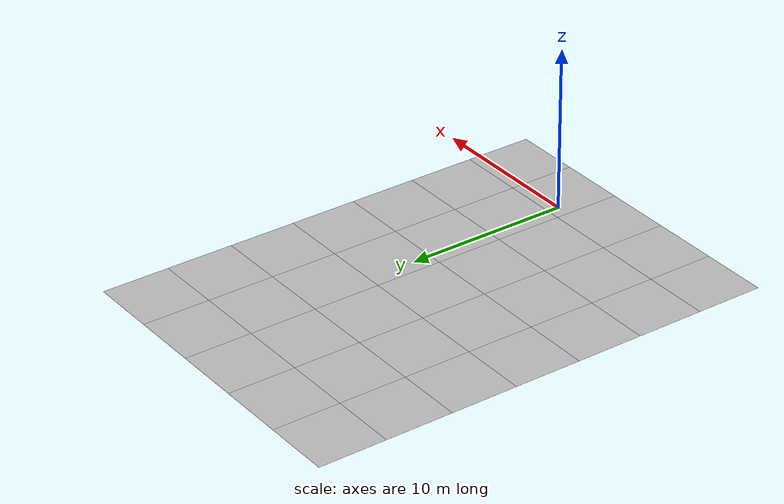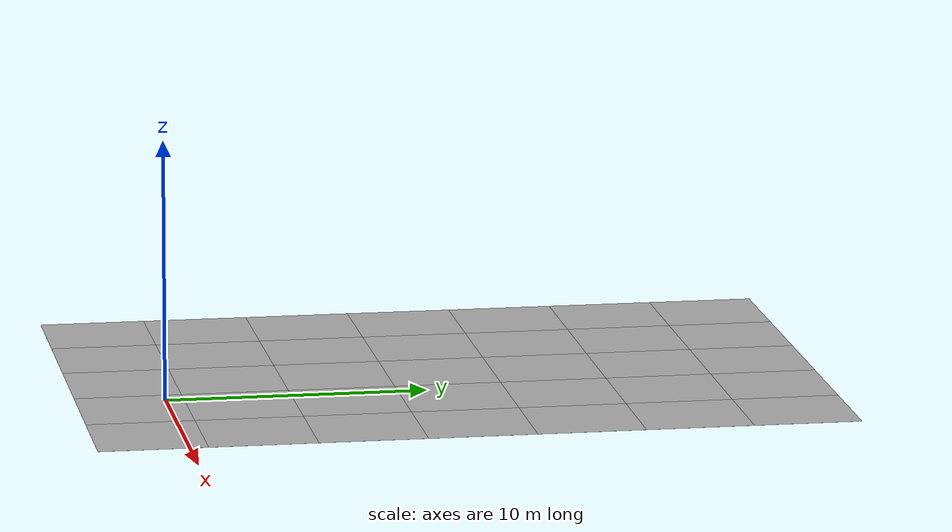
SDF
<sdf version='1.6'><world name='default'>
    <light name='sun_light' type='directional'>
      <pose frame=''>0 0 10 0 -0 0</pose>
      <diffuse>0.5 0.5 0.5 1</diffuse>
      <specular>0.1 0.1 0.1 1</specular>
      <direction>0.1 0.1 -0.9</direction>
      <attenuation>
        <range>20</range>
        <constant>0.5</constant>
        <linear>0.01</linear>
        <quadratic>0.001</quadratic>
      </attenuation>
      <cast_shadows>1</cast_shadows>
    </light>

    <model name='Tile/0-0'>
      <static>1</static>
      <link name='link'>
        <collision name='collision'>
          <geometry>
            <plane>
              <normal>0 0 1</normal>
              <size>4.096 4.096</size>
            </plane>
          </geometry>
          <surface>
            <friction>
              <ode>
                <mu>100</mu>
                <mu2>50</mu2>
              </ode>
              <torsional>
                <ode/>
              </torsional>
            </friction>
            <contact>
              <ode/>
            </contact>
            <bounce/>
          </surface>
          <max_contacts>10</max_contacts>
        </collision>
        <visual name='visual'>
          <cast_shadows>0</cast_shadows>
          <geometry>
            <plane>
              <normal>0 0 1</normal>
              <size>4.096 4.096</size>
            </plane>
          </geometry>
          <material>
            <script>
              <uri>file://materials/scripts</uri>
              <uri>file://materials/textures</uri>
              <name>Tile/5eab350b8220ac9944dbdfa4ac3288c7c17e24c3bf5df0dfcf6173d64dae00a1</name>
            </script>
          </material>
        </visual>
        <self_collide>0</self_collide>
        <enable_wind>0</enable_wind>
        <kinematic>0</kinematic>
      </link>
      <pose frame=''>-11.035007701902627 -1.3519999999999999 0 0 -0 0</pose>
    </model>

    <model name='Tile/0-1'>
      <static>1</static>
      <link name='link'>
        <collision name='collision'>
          <geometry>
            <plane>
              <normal>0 0 1</normal>
              <size>4.096 4.096</size>
            </plane>
          </geometry>
          <surface>
            <friction>
              <ode>
                <mu>100</mu>
                <mu2>50</mu2>
              </ode>
              <torsional>
                <ode/>
              </torsional>
            </friction>
            <contact>
              <ode/>
            </contact>
            <bounce/>
          </surface>
          <max_contacts>10</max_contacts>
        </collision>
        <visual name='visual'>
          <cast_shadows>0</cast_shadows>
          <geometry>
            <plane>
              <normal>0 0 1</normal>
              <size>4.096 4.096</size>
            </plane>
          </geometry>
          <material>
            <script>
              <uri>file://materials/scripts</uri>
              <uri>file://materials/textures</uri>
              <name>Tile/5eab350b8220ac9944dbdfa4ac3288c7c17e24c3bf5df0dfcf6173d64dae00a1</name>
            </script>
          </material>
        </visual>
        <self_collide>0</self_collide>
        <enable_wind>0</enable_wind>
        <kinematic>0</kinematic>
      </link>
      <pose frame=''>-11.035007701902627 2.744 0 0 -0 0</pose>
    </model>

    <model name='Tile/0-2'>
      <static>1</static>
      <link name='link'>
        <collision name='collision'>
          <geometry>
            <plane>
              <normal>0 0 1</normal>
              <size>4.096 4.096</size>
            </plane>
          </geometry>
          <surface>
            <friction>
              <ode>
                <mu>100</mu>
                <mu2>50</mu2>
              </ode>
              <torsional>
                <ode/>
              </torsional>
            </friction>
            <contact>
              <ode/>
            </contact>
            <bounce/>
          </surface>
          <max_contacts>10</max_contacts>
        </collision>
        <visual name='visual'>
          <cast_shadows>0</cast_shadows>
          <geometry>
            <plane>
              <normal>0 0 1</normal>
              <size>4.096 4.096</size>
            </plane>
          </geometry>
          <material>
            <script>
              <uri>file://materials/scripts</uri>
              <uri>file://materials/textures</uri>
              <name>Tile/5eab350b8220ac9944dbdfa4ac3288c7c17e24c3bf5df0dfcf6173d64dae00a1</name>
            </script>
          </material>
        </visual>
        <self_collide>0</self_collide>
        <enable_wind>0</enable_wind>
        <kinematic>0</kinematic>
      </link>
      <pose frame=''>-11.035007701902627 6.84 0 0 -0 0</pose>
    </model>

    <model name='Tile/0-3'>
      <static>1</static>
      <link name='link'>
        <collision name='collision'>
          <geometry>
            <plane>
              <normal>0 0 1</normal>
              <size>4.096 4.096</size>
            </plane>
          </geometry>
          <surface>
            <friction>
              <ode>
                <mu>100</mu>
                <mu2>50</mu2>
              </ode>
              <torsional>
                <ode/>
              </torsional>
            </friction>
            <contact>
              <ode/>
            </contact>
            <bounce/>
          </surface>
          <max_contacts>10</max_contacts>
        </collision>
        <visual name='visual'>
          <cast_shadows>0</cast_shadows>
          <geometry>
            <plane>
              <normal>0 0 1</normal>
              <size>4.096 4.096</size>
            </plane>
          </geometry>
          <material>
            <script>
              <uri>file://materials/scripts</uri>
              <uri>file://materials/textures</uri>
              <name>Tile/a981856d2c55d0ce4d6b92bf53bb470fe6b1cb9b7c366412037a12d138b0b966</name>
            </script>
          </material>
        </visual>
        <self_collide>0</self_collide>
        <enable_wind>0</enable_wind>
        <kinematic>0</kinematic>
      </link>
      <pose frame=''>-11.035007701902627 10.936 0 0 -0 0</pose>
    </model>

    <model name='Tile/0-4'>
      <static>1</static>
      <link name='link'>
        <collision name='collision'>
          <geometry>
            <plane>
              <normal>0 0 1</normal>
              <size>4.096 4.096</size>
            </plane>
          </geometry>
          <surface>
            <friction>
              <ode>
                <mu>100</mu>
                <mu2>50</mu2>
              </ode>
              <torsional>
                <ode/>
              </torsional>
            </friction>
            <contact>
              <ode/>
            </contact>
            <bounce/>
          </surface>
          <max_contacts>10</max_contacts>
        </collision>
        <visual name='visual'>
          <cast_shadows>0</cast_shadows>
          <geometry>
            <plane>
              <normal>0 0 1</normal>
              <size>4.096 4.096</size>
            </plane>
          </geometry>
          <material>
            <script>
              <uri>file://materials/scripts</uri>
              <uri>file://materials/textures</uri>
              <name>Tile/ddb5a0a86f15119f3679ceb9928ae637861c0973cf4353edb97ae4b16ba17513</name>
            </script>
          </material>
        </visual>
        <self_collide>0</self_collide>
        <enable_wind>0</enable_wind>
        <kinematic>0</kinematic>
      </link>
      <pose frame=''>-11.035007701902627 15.031999999999998 0 0 -0 0</pose>
    </model>

    <model name='Tile/0-5'>
      <static>1</static>
      <link name='link'>
        <collision name='collision'>
          <geometry>
            <plane>
              <normal>0 0 1</normal>
              <size>4.096 4.096</size>
            </plane>
          </geometry>
          <surface>
            <friction>
              <ode>
                <mu>100</mu>
                <mu2>50</mu2>
              </ode>
              <torsional>
                <ode/>
              </torsional>
            </friction>
            <contact>
              <ode/>
            </contact>
            <bounce/>
          </surface>
          <max_contacts>10</max_contacts>
        </collision>
        <visual name='visual'>
          <cast_shadows>0</cast_shadows>
          <geometry>
            <plane>
              <normal>0 0 1</normal>
              <size>4.096 4.096</size>
            </plane>
          </geometry>
          <material>
            <script>
              <uri>file://materials/scripts</uri>
              <uri>file://materials/textures</uri>
              <name>Tile/f0cb1a1b496898bed82f8e9667a400f65fb782beb891662c1df58068e33bcf52</name>
            </script>
          </material>
        </visual>
        <self_collide>0</self_collide>
        <enable_wind>0</enable_wind>
        <kinematic>0</kinematic>
      </link>
      <pose frame=''>-11.035007701902627 19.128 0 0 -0 0</pose>
    </model>

    <model name='Tile/0-6'>
      <static>1</static>
      <link name='link'>
        <collision name='collision'>
          <geometry>
            <plane>
              <normal>0 0 1</normal>
              <size>4.096 4.096</size>
            </plane>
          </geometry>
          <surface>
            <friction>
              <ode>
                <mu>100</mu>
                <mu2>50</mu2>
              </ode>
              <torsional>
                <ode/>
              </torsional>
            </friction>
            <contact>
              <ode/>
            </contact>
            <bounce/>
          </surface>
          <max_contacts>10</max_contacts>
        </collision>
        <visual name='visual'>
          <cast_shadows>0</cast_shadows>
          <geometry>
            <plane>
              <normal>0 0 1</normal>
              <size>4.096 4.096</size>
            </plane>
          </geometry>
          <material>
            <script>
              <uri>file://materials/scripts</uri>
              <uri>file://materials/textures</uri>
              <name>Tile/5eab350b8220ac9944dbdfa4ac3288c7c17e24c3bf5df0dfcf6173d64dae00a1</name>
            </script>
          </material>
        </visual>
        <self_collide>0</self_collide>
        <enable_wind>0</enable_wind>
        <kinematic>0</kinematic>
      </link>
      <pose frame=''>-11.035007701902627 23.224 0 0 -0 0</pose>
    </model>

    <model name='Tile/1-0'>
      <static>1</static>
      <link name='link'>
        <collision name='collision'>
          <geometry>
            <plane>
              <normal>0 0 1</normal>
              <size>4.096 4.096</size>
            </plane>
          </geometry>
          <surface>
            <friction>
              <ode>
                <mu>100</mu>
                <mu2>50</mu2>
              </ode>
              <torsional>
                <ode/>
              </torsional>
            </friction>
            <contact>
              <ode/>
            </contact>
            <bounce/>
          </surface>
          <max_contacts>10</max_contacts>
        </collision>
        <visual name='visual'>
          <cast_shadows>0</cast_shadows>
          <geometry>
            <plane>
              <normal>0 0 1</normal>
              <size>4.096 4.096</size>
            </plane>
          </geometry>
          <material>
            <script>
              <uri>file://materials/scripts</uri>
              <uri>file://materials/textures</uri>
              <name>Tile/5eab350b8220ac9944dbdfa4ac3288c7c17e24c3bf5df0dfcf6173d64dae00a1</name>
            </script>
          </material>
        </visual>
        <self_collide>0</self_collide>
        <enable_wind>0</enable_wind>
        <kinematic>0</kinematic>
      </link>
      <pose frame=''>-6.939007701902627 -1.3519999999999999 0 0 -0 0</pose>
    </model>

    <model name='Tile/1-1'>
      <static>1</static>
      <link name='link'>
        <collision name='collision'>
          <geometry>
            <plane>
              <normal>0 0 1</normal>
              <size>4.096 4.096</size>
            </plane>
          </geometry>
          <surface>
            <friction>
              <ode>
                <mu>100</mu>
                <mu2>50</mu2>
              </ode>
              <torsional>
                <ode/>
              </torsional>
            </friction>
            <contact>
              <ode/>
            </contact>
            <bounce/>
          </surface>
          <max_contacts>10</max_contacts>
        </collision>
        <visual name='visual'>
          <cast_shadows>0</cast_shadows>
          <geometry>
            <plane>
              <normal>0 0 1</normal>
              <size>4.096 4.096</size>
            </plane>
          </geometry>
          <material>
            <script>
              <uri>file://materials/scripts</uri>
              <uri>file://materials/textures</uri>
              <name>Tile/5eab350b8220ac9944dbdfa4ac3288c7c17e24c3bf5df0dfcf6173d64dae00a1</name>
            </script>
          </material>
        </visual>
        <self_collide>0</self_collide>
        <enable_wind>0</enable_wind>
        <kinematic>0</kinematic>
      </link>
      <pose frame=''>-6.939007701902627 2.744 0 0 -0 0</pose>
    </model>

    <model name='Tile/1-2'>
      <static>1</static>
      <link name='link'>
        <collision name='collision'>
          <geometry>
            <plane>
              <normal>0 0 1</normal>
              <size>4.096 4.096</size>
            </plane>
          </geometry>
          <surface>
            <friction>
              <ode>
                <mu>100</mu>
                <mu2>50</mu2>
              </ode>
              <torsional>
                <ode/>
              </torsional>
            </friction>
            <contact>
              <ode/>
            </contact>
            <bounce/>
          </surface>
          <max_contacts>10</max_contacts>
        </collision>
        <visual name='visual'>
          <cast_shadows>0</cast_shadows>
          <geometry>
            <plane>
              <normal>0 0 1</normal>
              <size>4.096 4.096</size>
            </plane>
          </geometry>
          <material>
            <script>
              <uri>file://materials/scripts</uri>
              <uri>file://materials/textures</uri>
              <name>Tile/5eab350b8220ac9944dbdfa4ac3288c7c17e24c3bf5df0dfcf6173d64dae00a1</name>
            </script>
          </material>
        </visual>
        <self_collide>0</self_collide>
        <enable_wind>0</enable_wind>
        <kinematic>0</kinematic>
      </link>
      <pose frame=''>-6.939007701902627 6.84 0 0 -0 0</pose>
    </model>

    <model name='Tile/1-3'>
      <static>1</static>
      <link name='link'>
        <collision name='collision'>
          <geometry>
            <plane>
              <normal>0 0 1</normal>
              <size>4.096 4.096</size>
            </plane>
          </geometry>
          <surface>
            <friction>
              <ode>
                <mu>100</mu>
                <mu2>50</mu2>
              </ode>
              <torsional>
                <ode/>
              </torsional>
            </friction>
            <contact>
              <ode/>
            </contact>
            <bounce/>
          </surface>
          <max_contacts>10</max_contacts>
        </collision>
        <visual name='visual'>
          <cast_shadows>0</cast_shadows>
          <geometry>
            <plane>
              <normal>0 0 1</normal>
              <size>4.096 4.096</size>
            </plane>
          </geometry>
          <material>
            <script>
              <uri>file://materials/scripts</uri>
              <uri>file://materials/textures</uri>
              <name>Tile/94ea7ca53941af8f832e82a02a8bdb73618a3ee550dcc7953a81b85dcdc70f12</name>
            </script>
          </material>
        </visual>
        <self_collide>0</self_collide>
        <enable_wind>0</enable_wind>
        <kinematic>0</kinematic>
      </link>
      <pose frame=''>-6.939007701902627 10.936 0 0 -0 0</pose>
    </model>

    <model name='Tile/1-4'>
      <static>1</static>
      <link name='link'>
        <collision name='collision'>
          <geometry>
            <plane>
              <normal>0 0 1</normal>
              <size>4.096 4.096</size>
            </plane>
          </geometry>
          <surface>
            <friction>
              <ode>
                <mu>100</mu>
                <mu2>50</mu2>
              </ode>
              <torsional>
                <ode/>
              </torsional>
            </friction>
            <contact>
              <ode/>
            </contact>
            <bounce/>
          </surface>
          <max_contacts>10</max_contacts>
        </collision>
        <visual name='visual'>
          <cast_shadows>0</cast_shadows>
          <geometry>
            <plane>
              <normal>0 0 1</normal>
              <size>4.096 4.096</size>
            </plane>
          </geometry>
          <material>
            <script>
              <uri>file://materials/scripts</uri>
              <uri>file://materials/textures</uri>
              <name>Tile/2a3a2c4fe3bd5bfca203f56fafc1ce47afc0b4364406ecb7092d9825b2aa1fc7</name>
            </script>
          </material>
        </visual>
        <self_collide>0</self_collide>
        <enable_wind>0</enable_wind>
        <kinematic>0</kinematic>
      </link>
      <pose frame=''>-6.939007701902627 15.031999999999998 0 0 -0 0</pose>
    </model>

    <model name='Tile/1-5'>
      <static>1</static>
      <link name='link'>
        <collision name='collision'>
          <geometry>
            <plane>
              <normal>0 0 1</normal>
              <size>4.096 4.096</size>
            </plane>
          </geometry>
          <surface>
            <friction>
              <ode>
                <mu>100</mu>
                <mu2>50</mu2>
              </ode>
              <torsional>
                <ode/>
              </torsional>
            </friction>
            <contact>
              <ode/>
            </contact>
            <bounce/>
          </surface>
          <max_contacts>10</max_contacts>
        </collision>
        <visual name='visual'>
          <cast_shadows>0</cast_shadows>
          <geometry>
            <plane>
              <normal>0 0 1</normal>
              <size>4.096 4.096</size>
            </plane>
          </geometry>
          <material>
            <script>
              <uri>file://materials/scripts</uri>
              <uri>file://materials/textures</uri>
              <name>Tile/3980b3b66548d2f948f7d6ce5b701a54590de694f2628f594d579f029de1a32a</name>
            </script>
          </material>
        </visual>
        <self_collide>0</self_collide>
        <enable_wind>0</enable_wind>
        <kinematic>0</kinematic>
      </link>
      <pose frame=''>-6.939007701902627 19.128 0 0 -0 0</pose>
    </model>

    <model name='Tile/1-6'>
      <static>1</static>
      <link name='link'>
        <collision name='collision'>
          <geometry>
            <plane>
              <normal>0 0 1</normal>
              <size>4.096 4.096</size>
            </plane>
          </geometry>
          <surface>
            <friction>
              <ode>
                <mu>100</mu>
                <mu2>50</mu2>
              </ode>
              <torsional>
                <ode/>
              </torsional>
            </friction>
            <contact>
              <ode/>
            </contact>
            <bounce/>
          </surface>
          <max_contacts>10</max_contacts>
        </collision>
        <visual name='visual'>
          <cast_shadows>0</cast_shadows>
          <geometry>
            <plane>
              <normal>0 0 1</normal>
              <size>4.096 4.096</size>
            </plane>
          </geometry>
          <material>
            <script>
              <uri>file://materials/scripts</uri>
              <uri>file://materials/textures</uri>
              <name>Tile/5eab350b8220ac9944dbdfa4ac3288c7c17e24c3bf5df0dfcf6173d64dae00a1</name>
            </script>
          </material>
        </visual>
        <self_collide>0</self_collide>
        <enable_wind>0</enable_wind>
        <kinematic>0</kinematic>
      </link>
      <pose frame=''>-6.939007701902627 23.224 0 0 -0 0</pose>
    </model>

    <model name='Tile/2-0'>
      <static>1</static>
      <link name='link'>
        <collision name='collision'>
          <geometry>
            <plane>
              <normal>0 0 1</normal>
              <size>4.096 4.096</size>
            </plane>
          </geometry>
          <surface>
            <friction>
              <ode>
                <mu>100</mu>
                <mu2>50</mu2>
              </ode>
              <torsional>
                <ode/>
              </torsional>
            </friction>
            <contact>
              <ode/>
            </contact>
            <bounce/>
          </surface>
          <max_contacts>10</max_contacts>
        </collision>
        <visual name='visual'>
          <cast_shadows>0</cast_shadows>
          <geometry>
            <plane>
              <normal>0 0 1</normal>
              <size>4.096 4.096</size>
            </plane>
          </geometry>
          <material>
            <script>
              <uri>file://materials/scripts</uri>
              <uri>file://materials/textures</uri>
              <name>Tile/5eab350b8220ac9944dbdfa4ac3288c7c17e24c3bf5df0dfcf6173d64dae00a1</name>
            </script>
          </material>
        </visual>
        <self_collide>0</self_collide>
        <enable_wind>0</enable_wind>
        <kinematic>0</kinematic>
      </link>
      <pose frame=''>-2.8430077019026267 -1.3519999999999999 0 0 -0 0</pose>
    </model>

    <model name='Tile/2-1'>
      <static>1</static>
      <link name='link'>
        <collision name='collision'>
          <geometry>
            <plane>
              <normal>0 0 1</normal>
              <size>4.096 4.096</size>
            </plane>
          </geometry>
          <surface>
            <friction>
              <ode>
                <mu>100</mu>
                <mu2>50</mu2>
              </ode>
              <torsional>
                <ode/>
              </torsional>
            </friction>
            <contact>
              <ode/>
            </contact>
            <bounce/>
          </surface>
          <max_contacts>10</max_contacts>
        </collision>
        <visual name='visual'>
          <cast_shadows>0</cast_shadows>
          <geometry>
            <plane>
              <normal>0 0 1</normal>
              <size>4.096 4.096</size>
            </plane>
          </geometry>
          <material>
            <script>
              <uri>file://materials/scripts</uri>
              <uri>file://materials/textures</uri>
              <name>Tile/6609865888230b3b875b9fa60f461a2fe31ad43733141fd3f550a7741a5d88f7</name>
            </script>
          </material>
        </visual>
        <self_collide>0</self_collide>
        <enable_wind>0</enable_wind>
        <kinematic>0</kinematic>
      </link>
      <pose frame=''>-2.8430077019026267 2.744 0 0 -0 0</pose>
    </model>

    <model name='Tile/2-2'>
      <static>1</static>
      <link name='link'>
        <collision name='collision'>
          <geometry>
            <plane>
              <normal>0 0 1</normal>
              <size>4.096 4.096</size>
            </plane>
          </geometry>
          <surface>
            <friction>
              <ode>
                <mu>100</mu>
                <mu2>50</mu2>
              </ode>
              <torsional>
                <ode/>
              </torsional>
            </friction>
            <contact>
              <ode/>
            </contact>
            <bounce/>
          </surface>
          <max_contacts>10</max_contacts>
        </collision>
        <visual name='visual'>
          <cast_shadows>0</cast_shadows>
          <geometry>
            <plane>
              <normal>0 0 1</normal>
              <size>4.096 4.096</size>
            </plane>
          </geometry>
          <material>
            <script>
              <uri>file://materials/scripts</uri>
              <uri>file://materials/textures</uri>
              <name>Tile/1977620b352a92210b0fa6d797cb4ce7d3d6b708ca0083b899807fa1d807fefb</name>
            </script>
          </material>
        </visual>
        <self_collide>0</self_collide>
        <enable_wind>0</enable_wind>
        <kinematic>0</kinematic>
      </link>
      <pose frame=''>-2.8430077019026267 6.84 0 0 -0 0</pose>
    </model>

    <model name='Tile/2-3'>
      <static>1</static>
      <link name='link'>
        <collision name='collision'>
          <geometry>
            <plane>
              <normal>0 0 1</normal>
              <size>4.096 4.096</size>
            </plane>
          </geometry>
          <surface>
            <friction>
              <ode>
                <mu>100</mu>
                <mu2>50</mu2>
              </ode>
              <torsional>
                <ode/>
              </torsional>
            </friction>
            <contact>
              <ode/>
            </contact>
            <bounce/>
          </surface>
          <max_contacts>10</max_contacts>
        </collision>
        <visual name='visual'>
          <cast_shadows>0</cast_shadows>
          <geometry>
            <plane>
              <normal>0 0 1</normal>
              <size>4.096 4.096</size>
            </plane>
          </geometry>
          <material>
            <script>
              <uri>file://materials/scripts</uri>
              <uri>file://materials/textures</uri>
              <name>Tile/0a60026877fb551f904b08090dd9dd71c953bd4ddd363a95bbaeda4a78e17700</name>
            </script>
          </material>
        </visual>
        <self_collide>0</self_collide>
        <enable_wind>0</enable_wind>
        <kinematic>0</kinematic>
      </link>
      <pose frame=''>-2.8430077019026267 10.936 0 0 -0 0</pose>
    </model>

    <model name='Tile/2-4'>
      <static>1</static>
      <link name='link'>
        <collision name='collision'>
          <geometry>
            <plane>
              <normal>0 0 1</normal>
              <size>4.096 4.096</size>
            </plane>
          </geometry>
          <surface>
            <friction>
              <ode>
                <mu>100</mu>
                <mu2>50</mu2>
              </ode>
              <torsional>
                <ode/>
              </torsional>
            </friction>
            <contact>
              <ode/>
            </contact>
            <bounce/>
          </surface>
          <max_contacts>10</max_contacts>
        </collision>
        <visual name='visual'>
          <cast_shadows>0</cast_shadows>
          <geometry>
            <plane>
              <normal>0 0 1</normal>
              <size>4.096 4.096</size>
            </plane>
          </geometry>
          <material>
            <script>
              <uri>file://materials/scripts</uri>
              <uri>file://materials/textures</uri>
              <name>Tile/5eab350b8220ac9944dbdfa4ac3288c7c17e24c3bf5df0dfcf6173d64dae00a1</name>
            </script>
          </material>
        </visual>
        <self_collide>0</self_collide>
        <enable_wind>0</enable_wind>
        <kinematic>0</kinematic>
      </link>
      <pose frame=''>-2.8430077019026267 15.031999999999998 0 0 -0 0</pose>
    </model>

    <model name='Tile/2-5'>
      <static>1</static>
      <link name='link'>
        <collision name='collision'>
          <geometry>
            <plane>
              <normal>0 0 1</normal>
              <size>4.096 4.096</size>
            </plane>
          </geometry>
          <surface>
            <friction>
              <ode>
                <mu>100</mu>
                <mu2>50</mu2>
              </ode>
              <torsional>
                <ode/>
              </torsional>
            </friction>
            <contact>
              <ode/>
            </contact>
            <bounce/>
          </surface>
          <max_contacts>10</max_contacts>
        </collision>
        <visual name='visual'>
          <cast_shadows>0</cast_shadows>
          <geometry>
            <plane>
              <normal>0 0 1</normal>
              <size>4.096 4.096</size>
            </plane>
          </geometry>
          <material>
            <script>
              <uri>file://materials/scripts</uri>
              <uri>file://materials/textures</uri>
              <name>Tile/5eab350b8220ac9944dbdfa4ac3288c7c17e24c3bf5df0dfcf6173d64dae00a1</name>
            </script>
          </material>
        </visual>
        <self_collide>0</self_collide>
        <enable_wind>0</enable_wind>
        <kinematic>0</kinematic>
      </link>
      <pose frame=''>-2.8430077019026267 19.128 0 0 -0 0</pose>
    </model>

    <model name='Tile/2-6'>
      <static>1</static>
      <link name='link'>
        <collision name='collision'>
          <geometry>
            <plane>
              <normal>0 0 1</normal>
              <size>4.096 4.096</size>
            </plane>
          </geometry>
          <surface>
            <friction>
              <ode>
                <mu>100</mu>
                <mu2>50</mu2>
              </ode>
              <torsional>
                <ode/>
              </torsional>
            </friction>
            <contact>
              <ode/>
            </contact>
            <bounce/>
          </surface>
          <max_contacts>10</max_contacts>
        </collision>
        <visual name='visual'>
          <cast_shadows>0</cast_shadows>
          <geometry>
            <plane>
              <normal>0 0 1</normal>
              <size>4.096 4.096</size>
            </plane>
          </geometry>
          <material>
            <script>
              <uri>file://materials/scripts</uri>
              <uri>file://materials/textures</uri>
              <name>Tile/5eab350b8220ac9944dbdfa4ac3288c7c17e24c3bf5df0dfcf6173d64dae00a1</name>
            </script>
          </material>
        </visual>
        <self_collide>0</self_collide>
        <enable_wind>0</enable_wind>
        <kinematic>0</kinematic>
      </link>
      <pose frame=''>-2.8430077019026267 23.224 0 0 -0 0</pose>
    </model>

    <model name='Tile/3-0'>
      <static>1</static>
      <link name='link'>
        <collision name='collision'>
          <geometry>
            <plane>
              <normal>0 0 1</normal>
              <size>4.096 4.096</size>
            </plane>
          </geometry>
          <surface>
            <friction>
              <ode>
                <mu>100</mu>
                <mu2>50</mu2>
              </ode>
              <torsional>
                <ode/>
              </torsional>
            </friction>
            <contact>
              <ode/>
            </contact>
            <bounce/>
          </surface>
          <max_contacts>10</max_contacts>
        </collision>
        <visual name='visual'>
          <cast_shadows>0</cast_shadows>
          <geometry>
            <plane>
              <normal>0 0 1</normal>
              <size>4.096 4.096</size>
            </plane>
          </geometry>
          <material>
            <script>
              <uri>file://materials/scripts</uri>
              <uri>file://materials/textures</uri>
              <name>Tile/6b8bf33d70a6cb77d55c240617c4e41a03b15d6d97c8ef422138a9658e74d870</name>
            </script>
          </material>
        </visual>
        <self_collide>0</self_collide>
        <enable_wind>0</enable_wind>
        <kinematic>0</kinematic>
      </link>
      <pose frame=''>1.2529922980973733 -1.3519999999999999 0 0 -0 0</pose>
    </model>

    <model name='Tile/3-1'>
      <static>1</static>
      <link name='link'>
        <collision name='collision'>
          <geometry>
            <plane>
              <normal>0 0 1</normal>
              <size>4.096 4.096</size>
            </plane>
          </geometry>
          <surface>
            <friction>
              <ode>
                <mu>100</mu>
                <mu2>50</mu2>
              </ode>
              <torsional>
                <ode/>
              </torsional>
            </friction>
            <contact>
              <ode/>
            </contact>
            <bounce/>
          </surface>
          <max_contacts>10</max_contacts>
        </collision>
        <visual name='visual'>
          <cast_shadows>0</cast_shadows>
          <geometry>
            <plane>
              <normal>0 0 1</normal>
              <size>4.096 4.096</size>
            </plane>
          </geometry>
          <material>
            <script>
              <uri>file://materials/scripts</uri>
              <uri>file://materials/textures</uri>
              <name>Tile/e41c526d9e42d44188d5498292d67864a8eccb946790d36abf1c798be09fb852</name>
            </script>
          </material>
        </visual>
        <self_collide>0</self_collide>
        <enable_wind>0</enable_wind>
        <kinematic>0</kinematic>
      </link>
      <pose frame=''>1.2529922980973733 2.744 0 0 -0 0</pose>
    </model>

    <model name='Tile/3-2'>
      <static>1</static>
      <link name='link'>
        <collision name='collision'>
          <geometry>
            <plane>
              <normal>0 0 1</normal>
              <size>4.096 4.096</size>
            </plane>
          </geometry>
          <surface>
            <friction>
              <ode>
                <mu>100</mu>
                <mu2>50</mu2>
              </ode>
              <torsional>
                <ode/>
              </torsional>
            </friction>
            <contact>
              <ode/>
            </contact>
            <bounce/>
          </surface>
          <max_contacts>10</max_contacts>
        </collision>
        <visual name='visual'>
          <cast_shadows>0</cast_shadows>
          <geometry>
            <plane>
              <normal>0 0 1</normal>
              <size>4.096 4.096</size>
            </plane>
          </geometry>
          <material>
            <script>
              <uri>file://materials/scripts</uri>
              <uri>file://materials/textures</uri>
              <name>Tile/4d401b2b41d0d79bf662fe14908274b1c641350c7aaf7abf4251e5a4d9352b49</name>
            </script>
          </material>
        </visual>
        <self_collide>0</self_collide>
        <enable_wind>0</enable_wind>
        <kinematic>0</kinematic>
      </link>
      <pose frame=''>1.2529922980973733 6.84 0 0 -0 0</pose>
    </model>

    <model name='Tile/3-3'>
      <static>1</static>
      <link name='link'>
        <collision name='collision'>
          <geometry>
            <plane>
              <normal>0 0 1</normal>
              <size>4.096 4.096</size>
            </plane>
          </geometry>
          <surface>
            <friction>
              <ode>
                <mu>100</mu>
                <mu2>50</mu2>
              </ode>
              <torsional>
                <ode/>
              </torsional>
            </friction>
            <contact>
              <ode/>
            </contact>
            <bounce/>
          </surface>
          <max_contacts>10</max_contacts>
        </collision>
        <visual name='visual'>
          <cast_shadows>0</cast_shadows>
          <geometry>
            <plane>
              <normal>0 0 1</normal>
              <size>4.096 4.096</size>
            </plane>
          </geometry>
          <material>
            <script>
              <uri>file://materials/scripts</uri>
              <uri>file://materials/textures</uri>
              <name>Tile/5eab350b8220ac9944dbdfa4ac3288c7c17e24c3bf5df0dfcf6173d64dae00a1</name>
            </script>
          </material>
        </visual>
        <self_collide>0</self_collide>
        <enable_wind>0</enable_wind>
        <kinematic>0</kinematic>
      </link>
      <pose frame=''>1.2529922980973733 10.936 0 0 -0 0</pose>
    </model>

    <model name='Tile/3-4'>
      <static>1</static>
      <link name='link'>
        <collision name='collision'>
          <geometry>
            <plane>
              <normal>0 0 1</normal>
              <size>4.096 4.096</size>
            </plane>
          </geometry>
          <surface>
            <friction>
              <ode>
                <mu>100</mu>
                <mu2>50</mu2>
              </ode>
              <torsional>
                <ode/>
              </torsional>
            </friction>
            <contact>
              <ode/>
            </contact>
            <bounce/>
          </surface>
          <max_contacts>10</max_contacts>
        </collision>
        <visual name='visual'>
          <cast_shadows>0</cast_shadows>
          <geometry>
            <plane>
              <normal>0 0 1</normal>
              <size>4.096 4.096</size>
            </plane>
          </geometry>
          <material>
            <script>
              <uri>file://materials/scripts</uri>
              <uri>file://materials/textures</uri>
              <name>Tile/5eab350b8220ac9944dbdfa4ac3288c7c17e24c3bf5df0dfcf6173d64dae00a1</name>
            </script>
          </material>
        </visual>
        <self_collide>0</self_collide>
        <enable_wind>0</enable_wind>
        <kinematic>0</kinematic>
      </link>
      <pose frame=''>1.2529922980973733 15.031999999999998 0 0 -0 0</pose>
    </model>

    <model name='Tile/3-5'>
      <static>1</static>
      <link name='link'>
        <collision name='collision'>
          <geometry>
            <plane>
              <normal>0 0 1</normal>
              <size>4.096 4.096</size>
            </plane>
          </geometry>
          <surface>
            <friction>
              <ode>
                <mu>100</mu>
                <mu2>50</mu2>
              </ode>
              <torsional>
                <ode/>
              </torsional>
            </friction>
            <contact>
              <ode/>
            </contact>
            <bounce/>
          </surface>
          <max_contacts>10</max_contacts>
        </collision>
        <visual name='visual'>
          <cast_shadows>0</cast_shadows>
          <geometry>
            <plane>
              <normal>0 0 1</normal>
              <size>4.096 4.096</size>
            </plane>
          </geometry>
          <material>
            <script>
              <uri>file://materials/scripts</uri>
              <uri>file://materials/textures</uri>
              <name>Tile/5eab350b8220ac9944dbdfa4ac3288c7c17e24c3bf5df0dfcf6173d64dae00a1</name>
            </script>
          </material>
        </visual>
        <self_collide>0</self_collide>
        <enable_wind>0</enable_wind>
        <kinematic>0</kinematic>
      </link>
      <pose frame=''>1.2529922980973733 19.128 0 0 -0 0</pose>
    </model>

    <model name='Tile/3-6'>
      <static>1</static>
      <link name='link'>
        <collision name='collision'>
          <geometry>
            <plane>
              <normal>0 0 1</normal>
              <size>4.096 4.096</size>
            </plane>
          </geometry>
          <surface>
            <friction>
              <ode>
                <mu>100</mu>
                <mu2>50</mu2>
              </ode>
              <torsional>
                <ode/>
              </torsional>
            </friction>
            <contact>
              <ode/>
            </contact>
            <bounce/>
          </surface>
          <max_contacts>10</max_contacts>
        </collision>
        <visual name='visual'>
          <cast_shadows>0</cast_shadows>
          <geometry>
            <plane>
              <normal>0 0 1</normal>
              <size>4.096 4.096</size>
            </plane>
          </geometry>
          <material>
            <script>
              <uri>file://materials/scripts</uri>
              <uri>file://materials/textures</uri>
              <name>Tile/5eab350b8220ac9944dbdfa4ac3288c7c17e24c3bf5df0dfcf6173d64dae00a1</name>
            </script>
          </material>
        </visual>
        <self_collide>0</self_collide>
        <enable_wind>0</enable_wind>
        <kinematic>0</kinematic>
      </link>
      <pose frame=''>1.2529922980973733 23.224 0 0 -0 0</pose>
    </model>

    <model name='Tile/4-0'>
      <static>1</static>
      <link name='link'>
        <collision name='collision'>
          <geometry>
            <plane>
              <normal>0 0 1</normal>
              <size>4.096 4.096</size>
            </plane>
          </geometry>
          <surface>
            <friction>
              <ode>
                <mu>100</mu>
                <mu2>50</mu2>
              </ode>
              <torsional>
                <ode/>
              </torsional>
            </friction>
            <contact>
              <ode/>
            </contact>
            <bounce/>
          </surface>
          <max_contacts>10</max_contacts>
        </collision>
        <visual name='visual'>
          <cast_shadows>0</cast_shadows>
          <geometry>
            <plane>
              <normal>0 0 1</normal>
              <size>4.096 4.096</size>
            </plane>
          </geometry>
          <material>
            <script>
              <uri>file://materials/scripts</uri>
              <uri>file://materials/textures</uri>
              <name>Tile/5eab350b8220ac9944dbdfa4ac3288c7c17e24c3bf5df0dfcf6173d64dae00a1</name>
            </script>
          </material>
        </visual>
        <self_collide>0</self_collide>
        <enable_wind>0</enable_wind>
        <kinematic>0</kinematic>
      </link>
      <pose frame=''>5.348992298097372 -1.3519999999999999 0 0 -0 0</pose>
    </model>

    <model name='Tile/4-1'>
      <static>1</static>
      <link name='link'>
        <collision name='collision'>
          <geometry>
            <plane>
              <normal>0 0 1</normal>
              <size>4.096 4.096</size>
            </plane>
          </geometry>
          <surface>
            <friction>
              <ode>
                <mu>100</mu>
                <mu2>50</mu2>
              </ode>
              <torsional>
                <ode/>
              </torsional>
            </friction>
            <contact>
              <ode/>
            </contact>
            <bounce/>
          </surface>
          <max_contacts>10</max_contacts>
        </collision>
        <visual name='visual'>
          <cast_shadows>0</cast_shadows>
          <geometry>
            <plane>
              <normal>0 0 1</normal>
              <size>4.096 4.096</size>
            </plane>
          </geometry>
          <material>
            <script>
              <uri>file://materials/scripts</uri>
              <uri>file://materials/textures</uri>
              <name>Tile/5eab350b8220ac9944dbdfa4ac3288c7c17e24c3bf5df0dfcf6173d64dae00a1</name>
            </script>
          </material>
        </visual>
        <self_collide>0</self_collide>
        <enable_wind>0</enable_wind>
        <kinematic>0</kinematic>
      </link>
      <pose frame=''>5.348992298097372 2.744 0 0 -0 0</pose>
    </model>

    <model name='Tile/4-2'>
      <static>1</static>
      <link name='link'>
        <collision name='collision'>
          <geometry>
            <plane>
              <normal>0 0 1</normal>
              <size>4.096 4.096</size>
            </plane>
          </geometry>
          <surface>
            <friction>
              <ode>
                <mu>100</mu>
                <mu2>50</mu2>
              </ode>
              <torsional>
                <ode/>
              </torsional>
            </friction>
            <contact>
              <ode/>
            </contact>
            <bounce/>
          </surface>
          <max_contacts>10</max_contacts>
        </collision>
        <visual name='visual'>
          <cast_shadows>0</cast_shadows>
          <geometry>
            <plane>
              <normal>0 0 1</normal>
              <size>4.096 4.096</size>
            </plane>
          </geometry>
          <material>
            <script>
              <uri>file://materials/scripts</uri>
              <uri>file://materials/textures</uri>
              <name>Tile/5eab350b8220ac9944dbdfa4ac3288c7c17e24c3bf5df0dfcf6173d64dae00a1</name>
            </script>
          </material>
        </visual>
        <self_collide>0</self_collide>
        <enable_wind>0</enable_wind>
        <kinematic>0</kinematic>
      </link>
      <pose frame=''>5.348992298097372 6.84 0 0 -0 0</pose>
    </model>

    <model name='Tile/4-3'>
      <static>1</static>
      <link name='link'>
        <collision name='collision'>
          <geometry>
            <plane>
              <normal>0 0 1</normal>
              <size>4.096 4.096</size>
            </plane>
          </geometry>
          <surface>
            <friction>
              <ode>
                <mu>100</mu>
                <mu2>50</mu2>
              </ode>
              <torsional>
                <ode/>
              </torsional>
            </friction>
            <contact>
              <ode/>
            </contact>
            <bounce/>
          </surface>
          <max_contacts>10</max_contacts>
        </collision>
        <visual name='visual'>
          <cast_shadows>0</cast_shadows>
          <geometry>
            <plane>
              <normal>0 0 1</normal>
              <size>4.096 4.096</size>
            </plane>
          </geometry>
          <material>
            <script>
              <uri>file://materials/scripts</uri>
              <uri>file://materials/textures</uri>
              <name>Tile/5eab350b8220ac9944dbdfa4ac3288c7c17e24c3bf5df0dfcf6173d64dae00a1</name>
            </script>
          </material>
        </visual>
        <self_collide>0</self_collide>
        <enable_wind>0</enable_wind>
        <kinematic>0</kinematic>
      </link>
      <pose frame=''>5.348992298097372 10.936 0 0 -0 0</pose>
    </model>

    <model name='Tile/4-4'>
      <static>1</static>
      <link name='link'>
        <collision name='collision'>
          <geometry>
            <plane>
              <normal>0 0 1</normal>
              <size>4.096 4.096</size>
            </plane>
          </geometry>
          <surface>
            <friction>
              <ode>
                <mu>100</mu>
                <mu2>50</mu2>
              </ode>
              <torsional>
                <ode/>
              </torsional>
            </friction>
            <contact>
              <ode/>
            </contact>
            <bounce/>
          </surface>
          <max_contacts>10</max_contacts>
        </collision>
        <visual name='visual'>
          <cast_shadows>0</cast_shadows>
          <geometry>
            <plane>
              <normal>0 0 1</normal>
              <size>4.096 4.096</size>
            </plane>
          </geometry>
          <material>
            <script>
              <uri>file://materials/scripts</uri>
              <uri>file://materials/textures</uri>
              <name>Tile/5eab350b8220ac9944dbdfa4ac3288c7c17e24c3bf5df0dfcf6173d64dae00a1</name>
            </script>
          </material>
        </visual>
        <self_collide>0</self_collide>
        <enable_wind>0</enable_wind>
        <kinematic>0</kinematic>
      </link>
      <pose frame=''>5.348992298097372 15.031999999999998 0 0 -0 0</pose>
    </model>

    <model name='Tile/4-5'>
      <static>1</static>
      <link name='link'>
        <collision name='collision'>
          <geometry>
            <plane>
              <normal>0 0 1</normal>
              <size>4.096 4.096</size>
            </plane>
          </geometry>
          <surface>
            <friction>
              <ode>
                <mu>100</mu>
                <mu2>50</mu2>
              </ode>
              <torsional>
                <ode/>
              </torsional>
            </friction>
            <contact>
              <ode/>
            </contact>
            <bounce/>
          </surface>
          <max_contacts>10</max_contacts>
        </collision>
        <visual name='visual'>
          <cast_shadows>0</cast_shadows>
          <geometry>
            <plane>
              <normal>0 0 1</normal>
              <size>4.096 4.096</size>
            </plane>
          </geometry>
          <material>
            <script>
              <uri>file://materials/scripts</uri>
              <uri>file://materials/textures</uri>
              <name>Tile/5eab350b8220ac9944dbdfa4ac3288c7c17e24c3bf5df0dfcf6173d64dae00a1</name>
            </script>
          </material>
        </visual>
        <self_collide>0</self_collide>
        <enable_wind>0</enable_wind>
        <kinematic>0</kinematic>
      </link>
      <pose frame=''>5.348992298097372 19.128 0 0 -0 0</pose>
    </model>

    <model name='Tile/4-6'>
      <static>1</static>
      <link name='link'>
        <collision name='collision'>
          <geometry>
            <plane>
              <normal>0 0 1</normal>
              <size>4.096 4.096</size>
            </plane>
          </geometry>
          <surface>
            <friction>
              <ode>
                <mu>100</mu>
                <mu2>50</mu2>
              </ode>
              <torsional>
                <ode/>
              </torsional>
            </friction>
            <contact>
              <ode/>
            </contact>
            <bounce/>
          </surface>
          <max_contacts>10</max_contacts>
        </collision>
        <visual name='visual'>
          <cast_shadows>0</cast_shadows>
          <geometry>
            <plane>
              <normal>0 0 1</normal>
              <size>4.096 4.096</size>
            </plane>
          </geometry>
          <material>
            <script>
              <uri>file://materials/scripts</uri>
              <uri>file://materials/textures</uri>
              <name>Tile/5eab350b8220ac9944dbdfa4ac3288c7c17e24c3bf5df0dfcf6173d64dae00a1</name>
            </script>
          </material>
        </visual>
        <self_collide>0</self_collide>
        <enable_wind>0</enable_wind>
        <kinematic>0</kinematic>
      </link>
      <pose frame=''>5.348992298097372 23.224 0 0 -0 0</pose>
    </model>
    </world></sdf>
